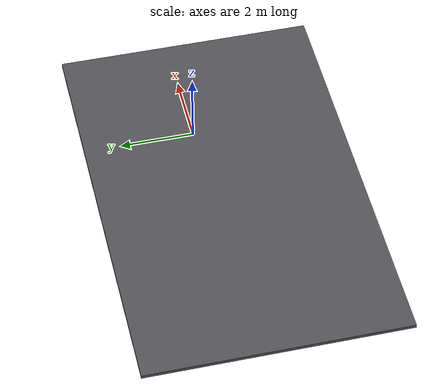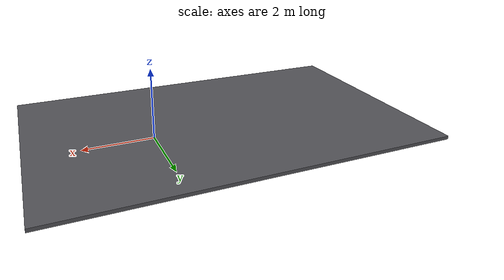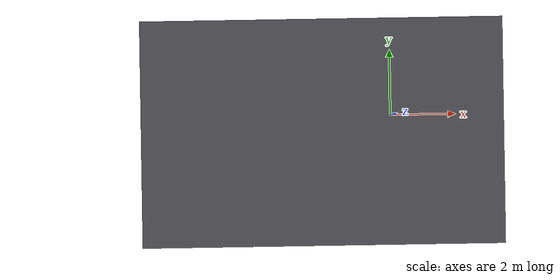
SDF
<sdf version="1.8">
 <world name="ahead_workcell_v4_2_physical_scale">
  <model name="floor">
   <static>true</static>
   <link name="floor_link">
    <collision name="collision">
     <pose>-2.1 -0.5 -0.05 0 0 0</pose>
     <geometry><box><size>11.2 7.0 0.10</size></box></geometry>
    </collision>
    <visual name="visual">
     <pose>-2.1 -0.5 -0.05 0 0 0</pose>
     <geometry><box><size>11.2 7.0 0.10</size></box></geometry>
     <material><ambient>0.22 0.22 0.23 1</ambient><diffuse>0.32 0.32 0.34 1</diffuse></material>
    </visual>
   </link>
  </model>
 </world>
</sdf>
